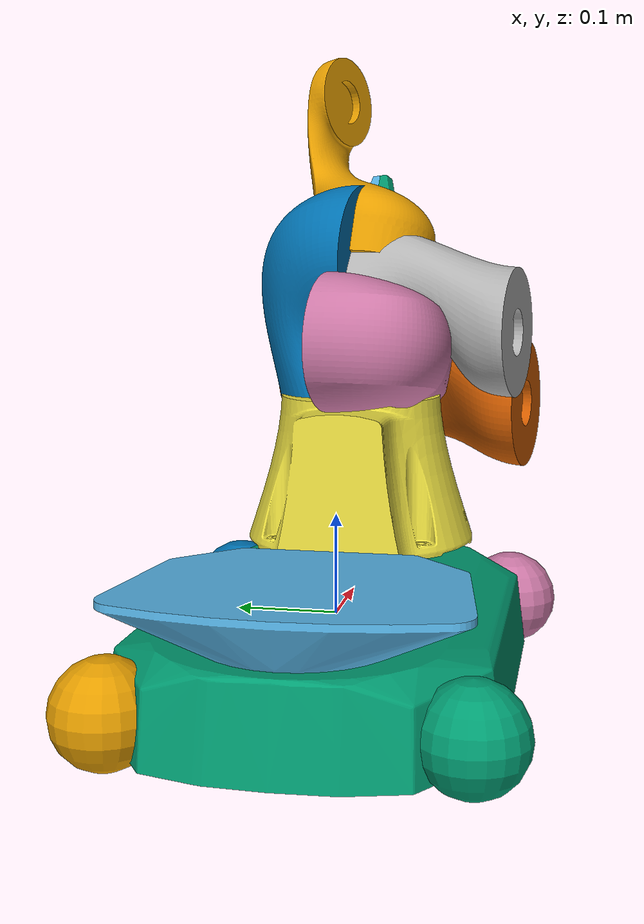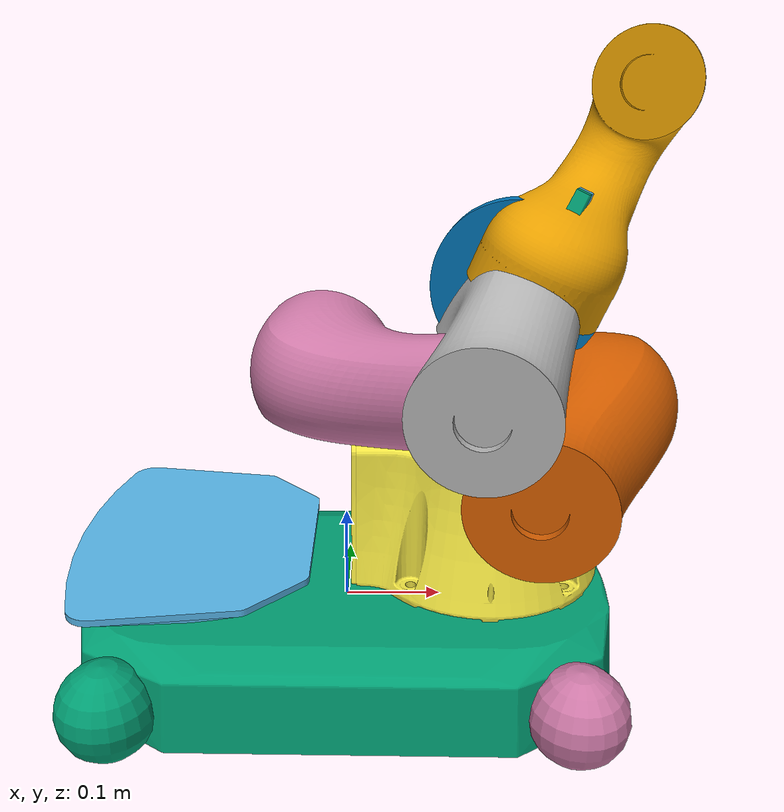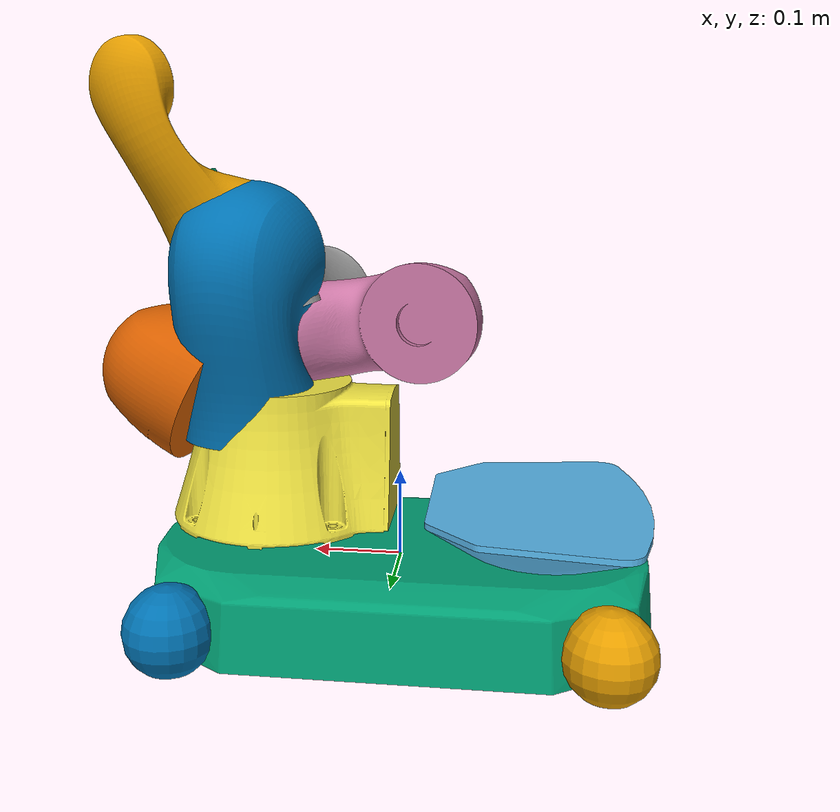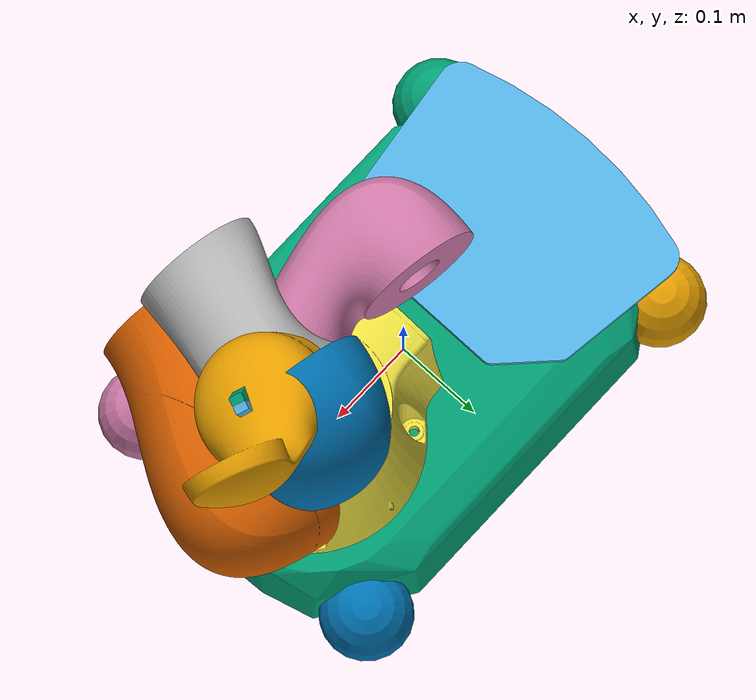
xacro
<?xml version="1.0" encoding="UTF-8"?>

<robot name="kuka_youbot" xmlns:xacro="http://wiki.ros.org/xacro">

    <xacro:arg name="control_type" default="Position"/>
    <xacro:arg name="main_frame_name" default="footprint"/>

    <!-- Import all Gazebo-customization elements, including Gazebo colors -->
    <xacro:include filename="$(find kuka_youbot_support)/urdf/kuka_youbot_gazebo.xacro"/>
    <xacro:include filename="$(find kuka_youbot_support)/urdf/kuka_youbot_macro.xacro"/>
    <xacro:include filename="$(find kuka_youbot_support)/urdf/kuka_youbot_transmission.xacro"/>

    <xacro:kuka_youbot prefix="" main_frame_name="$(arg main_frame_name)"/>
    <xacro:kuka_youbot_transmission prefix="" control_type="$(arg control_type)"/>
    <xacro:kuka_youbot_gazebo prefix="" main_frame_name="$(arg main_frame_name)"/>

    <!-- For mobile robots we can not set world as main frame, but rvis requires it. Because of that we need to specify
    name of main frame with run parameter-->

</robot>

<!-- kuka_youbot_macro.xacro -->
<robot xmlns:xacro="http://wiki.ros.org/xacro">

    <!-- PI константа -->
    <xacro:property name="PI" value="3.1415926535897931"/>

    <!--т.к. колёса у нас одинаоквые, а их 4 для экономии места запишем их параметры через переменные-->
    <xacro:property name="caster_offset_x" value="0.228"/>
    <xacro:property name="caster_offset_y" value="0.158"/>
    <xacro:property name="caster_offset_z" value="-0.034"/>
    <xacro:property name="wheel_offset_x" value="0.0"/>
    <xacro:property name="wheel_offset_y" value="0.0"/>
    <xacro:property name="wheel_offset_z" value="0.0"/>
    <xacro:property name="wheel_radius" value="0.05"/>
    <xacro:property name="wheel_length" value="0.005"/>
    <xacro:property name="caster_joint_damping" value="1.0"/>
    <xacro:property name="caster_joint_friction" value="1.0"/>
    <xacro:property name="caster_joint_effort" value="30"/>
    <xacro:property name="caster_joint_velocity" value="10"/>
    <xacro:property name="wheel_joint_damping" value="1.0"/>
    <xacro:property name="wheel_joint_friction" value="1.0"/>
    <xacro:property name="wheel_joint_effort" value="30"/>
    <xacro:property name="wheel_joint_velocity" value="10"/>
    <xacro:macro name="wheel_link_content">
        <inertial>
            <mass value="0.4"/>
            <origin xyz="0 0 0"/>
            <inertia ixx="0.012411765597" ixy="-0.000711733678" ixz="0.00050272983" iyy="0.015218160428"
                     iyz="-0.000004273467" izz="0.011763977943"/>
        </inertial>
        <visual>
            <origin xyz="0 0 0" rpy="0 0 0"/>
            <geometry>
                <sphere radius="${wheel_radius}"/>
            </geometry>
        </visual>
        <collision>
            <origin xyz="0 0 0" rpy="${PI/2} 0 0"/>
            <geometry>
                <cylinder radius="${wheel_radius}" length="${wheel_radius}"/>
            </geometry>
        </collision>
    </xacro:macro>
    <xacro:macro name="caster_link_content">
        <inertial>
            <mass value="0.1"/>
            <origin xyz="0 0 0"/>
            <inertia ixx="0.012411765597" ixy="-0.000711733678" ixz="0.00050272983" iyy="0.015218160428"
                     iyz="-0.000004273467" izz="0.011763977943"/>
        </inertial>
    </xacro:macro>

    <xacro:macro name="kuka_youbot" params="prefix main_frame_name">

        <!--******************************************BASE*************************************************-->
        <link name="${prefix}${main_frame_name}">
            <visual>
                <origin xyz="0 0 0" rpy="0 0 0"/>
                <geometry>
                    <box size="0.001 0.001 0.001"/>
                </geometry>
            </visual>
            <collision>
                <origin xyz="0 0 -0.050" rpy="0 0 0"/>
                <geometry>
                    <box size="0.001 0.001 0.001"/>
                </geometry>
            </collision>
        </link>
        <link name="${prefix}plate_link">
            <inertial>
                <origin xyz="0 0 0" rpy="0 0 0"/>
                <mass value="1"/>
                <inertia ixx="0.01" ixy="0" ixz="0" iyy="0.01" iyz="0" izz="0.01"/>
            </inertial>
            <visual>
                <origin xyz="0 0 0" rpy="0 0 0"/>
                <geometry>
                    <mesh filename="package://kuka_youbot_support/meshes/visual/plate.dae"/>
                </geometry>
            </visual>
            <collision>
                <origin xyz="0 0 0" rpy="0 0 0"/>
                <geometry>
                    <mesh filename="package://kuka_youbot_support/meshes/collision/plate.stl"/>
                </geometry>
            </collision>
        </link>
        <link name="${prefix}base_link">
            <inertial>
                <mass value="100"/>
                <origin xyz="0 0 0"/>
                <inertia ixx="5.652232699207" ixy="-0.009719934438" ixz="1.293988226423" iyy="5.669473158652"
                         iyz="-0.007379583694" izz="3.683196351726"/>
            </inertial>
            <visual>
                <origin xyz="0 0 0" rpy="0 0 0"/>
                <geometry>
                    <mesh filename="package://kuka_youbot_support/meshes/visual/base.dae"/>
                </geometry>
            </visual>
            <collision>
                <origin xyz="0 0 0" rpy="0 0 0"/>
                <geometry>
                    <mesh filename="package://kuka_youbot_support/meshes/collision/base.stl"/>
                </geometry>
            </collision>
        </link>
        <link name="caster_link_fl">
            <xacro:caster_link_content/>
        </link>
        <link name="wheel_link_fl">
            <xacro:wheel_link_content/>
        </link>
        <link name="caster_link_fr">
            <xacro:caster_link_content/>
        </link>
        <link name="wheel_link_fr">
            <xacro:wheel_link_content/>
        </link>
        <link name="caster_link_bl">
            <xacro:caster_link_content/>
        </link>
        <link name="wheel_link_bl">
            <xacro:wheel_link_content/>
        </link>
        <link name="caster_link_br">
            <xacro:caster_link_content/>
        </link>
        <link name="wheel_link_br">
            <xacro:wheel_link_content/>
        </link>

        <joint name="${prefix}plate_joint" type="fixed">
            <origin xyz="-0.159 0 0.046" rpy="0 0 0"/>
            <parent link="${prefix}base_link"/>
            <child link="${prefix}plate_link"/>
        </joint>
        <joint name="${prefix}footprint_joint" type="fixed">
            <origin xyz="0 0 0" rpy="0 0 0"/>
            <child link="${prefix}base_link"/>
            <parent link="${prefix}${main_frame_name}"/>
        </joint>
        <joint name="caster_joint_fl" type="continuous">
            <origin xyz="${caster_offset_x} ${caster_offset_y} ${caster_offset_z}" rpy="0 0 0"/>
            <axis xyz="0 0 1"/>
            <limit effort="${caster_joint_effort}" velocity="${caster_joint_velocity}"/>
            <dynamics damping="${caster_joint_damping}" friction="${caster_joint_friction}"/>
            <parent link="${prefix}base_link"/>
            <child link="caster_link_fl"/>
        </joint>
        <joint name="wheel_joint_fl" type="continuous">
            <axis xyz="0 1 0"/>
            <limit effort="${wheel_joint_effort}" velocity="${wheel_joint_velocity}"/>
            <origin xyz="${wheel_offset_x} ${wheel_offset_y} ${wheel_offset_z}" rpy="0 0 0"/>
            <parent link="caster_link_fl"/>
            <dynamics damping="${wheel_joint_damping}" friction="${wheel_joint_friction}"/>
            <child link="wheel_link_fl"/>
        </joint>
        <joint name="caster_joint_fr" type="continuous">
            <origin xyz="${caster_offset_x} ${-caster_offset_y} ${caster_offset_z}" rpy="0 0 0"/>
            <axis xyz="0 0 1"/>
            <limit effort="${caster_joint_effort}" velocity="${caster_joint_velocity}"/>
            <dynamics damping="${caster_joint_damping}" friction="${caster_joint_friction}"/>
            <parent link="${prefix}base_link"/>
            <child link="caster_link_fr"/>
        </joint>
        <joint name="wheel_joint_fr" type="continuous">
            <axis xyz="0 1 0"/>
            <limit effort="${wheel_joint_effort}" velocity="${wheel_joint_velocity}"/>
            <dynamics damping="${wheel_joint_damping}" friction="${wheel_joint_friction}"/>
            <origin xyz="${wheel_offset_x} ${wheel_offset_y} ${wheel_offset_z}" rpy="0 0 0"/>
            <parent link="caster_link_fr"/>
            <child link="wheel_link_fr"/>
        </joint>
        <joint name="caster_joint_bl" type="continuous">
            <origin xyz="${-caster_offset_x} ${caster_offset_y} ${caster_offset_z}" rpy="0 0 0"/>
            <axis xyz="0 0 1"/>
            <limit effort="${caster_joint_effort}" velocity="${caster_joint_velocity}"/>
            <dynamics damping="${caster_joint_damping}" friction="${caster_joint_friction}"/>
            <parent link="${prefix}base_link"/>
            <child link="caster_link_bl"/>
        </joint>
        <joint name="wheel_joint_bl" type="continuous">
            <axis xyz="0 1 0"/>
            <limit effort="10" velocity="10"/>
            <limit effort="${wheel_joint_effort}" velocity="${wheel_joint_velocity}"/>
            <dynamics damping="${wheel_joint_damping}" friction="${wheel_joint_friction}"/>
            <origin xyz="${wheel_offset_x} ${wheel_offset_y} ${wheel_offset_z}" rpy="0 0 0"/>
            <parent link="caster_link_bl"/>
            <child link="wheel_link_bl"/>
        </joint>
        <joint name="caster_joint_br" type="continuous">
            <origin xyz="${-caster_offset_x} ${-caster_offset_y} ${caster_offset_z}" rpy="0 0 0"/>
            <axis xyz="0 0 1"/>
            <limit effort="${caster_joint_effort}" velocity="${caster_joint_velocity}"/>
            <dynamics damping="${caster_joint_damping}" friction="${caster_joint_friction}"/>
            <parent link="${prefix}base_link"/>
            <child link="caster_link_br"/>
        </joint>
        <joint name="wheel_joint_br" type="continuous">
            <axis xyz="0 1 0"/>
            <limit effort="${wheel_joint_effort}" velocity="${wheel_joint_velocity}"/>
            <dynamics damping="${wheel_joint_damping}" friction="${wheel_joint_friction}"/>
            <origin xyz="${wheel_offset_x} ${wheel_offset_y} ${wheel_offset_z}" rpy="0 0 0"/>
            <parent link="caster_link_br"/>
            <child link="wheel_link_br"/>
        </joint>

        <!--**************************ARM************************************-->
        <link name="${prefix}arm_link_0">
            <inertial>
                <origin xyz="0 0 0" rpy="0 0 0"/>
                <mass value="0.845"/>
                <inertia ixx="0.01" ixy="0" ixz="0" iyy="0.01" iyz="0" izz="0.01"/>
            </inertial>
            <visual>
                <origin xyz="0 0 0" rpy="0 0 0"/>
                <geometry>
                    <mesh filename="package://kuka_youbot_support/meshes/visual/link_0.dae"/>
                </geometry>
            </visual>
            <collision>
                <origin xyz="0 0 0" rpy="0 0 0"/>
                <geometry>
                    <mesh filename="package://kuka_youbot_support/meshes/collision/link_0.stl"/>
                </geometry>
            </collision>
        </link>
        <link name="${prefix}arm_link_1">
            <inertial>
                <mass value="2.412"/>
                <origin xyz="0.01489 0.00213 0.00213" rpy="0 0 0"/>
                <inertia ixx="0.003863" ixy="-0.000979" ixz="0.000000" iyy="0.006196" iyz="0.000000" izz="0.006369"/>
            </inertial>
            <visual>
                <origin xyz="0 0 0" rpy="0 0 0"/>
                <geometry>
                    <mesh filename="package://kuka_youbot_support/meshes/visual/link_1.dae"/>
                </geometry>
            </visual>
            <collision>
                <origin xyz="0 0 0" rpy="0 0 0"/>
                <geometry>
                    <mesh filename="package://kuka_youbot_support/meshes/collision/link_1.stl"/>
                </geometry>
            </collision>
        </link>
        <link name="${prefix}arm_link_2">
            <inertial>
                <mass value="1.155"/>
                <origin xyz="0.10453 0.0017 -0.00297"
                        rpy="0 0 0"/>
                <inertia ixx="0.000823" ixy="0.000000" ixz="-0.000000" iyy="0.004447" iyz="0.000000" izz="0.004439"/>
            </inertial>
            <visual>
                <origin xyz="0 -0.032 0.078" rpy="0 0 0"/>
                <geometry>
                    <mesh filename="package://kuka_youbot_support/meshes/visual/link_2.dae"/>
                </geometry>
            </visual>
            <collision>
                <origin xyz="0 -0.032 0.078" rpy="0 0 0"/>
                <geometry>
                    <mesh filename="package://kuka_youbot_support/meshes/collision/link_2.stl"/>
                </geometry>
            </collision>
        </link>
        <link name="${prefix}arm_link_3">
            <inertial>
                <mass value="0.934"/>
                <origin xyz="0.0001 0.0967 0.02107"
                        rpy="0 0 0"/>
                <inertia ixx="0.002459" ixy="0.000000" ixz="0.000000" iyy="0.002571" iyz="-0.000000" izz="0.000535"/>
            </inertial>
            <visual>
                <origin xyz="0.000 0.028 0.079" rpy="0 0 0"/>
                <geometry>
                    <mesh filename="package://kuka_youbot_support/meshes/visual/link_3.dae"/>
                </geometry>
            </visual>
            <collision>
                <origin xyz="0.000 0.028 0.079" rpy="0 0 0"/>
                <geometry>
                    <mesh filename="package://kuka_youbot_support/meshes/collision/link_3.stl"/>
                </geometry>
            </collision>
        </link>
        <link name="${prefix}arm_link_4">
            <inertial>
                <mass value="0.877"/>
                <origin xyz="0.00011 0.05103 -0.02319"
                        rpy="0 0 0"/>
                <inertia ixx="0.000869" ixy="0.000000" ixz="-0.000000" iyy="0.001173" iyz="-0.000231" izz="0.001091"/>
            </inertial>
            <visual>
                <origin xyz="0 -0.010 0.029" rpy="0 0 0"/>
                <geometry>
                    <mesh filename="package://kuka_youbot_support/meshes/visual/link_4.dae"/>
                </geometry>
            </visual>
            <collision>
                <origin xyz="0 -0.010 0.029" rpy="0 0 0"/>
                <geometry>
                    <mesh filename="package://kuka_youbot_support/meshes/collision/link_4.stl"/>
                </geometry>
            </collision>
        </link>
        <link name="${prefix}arm_link_5">
            <inertial>
                <mass value="0.251"/>
                <origin xyz="0 0.00115 -0.01683"
                        rpy="0 0 0"/>
                <inertia ixx="0.000280" ixy="0.000000" ixz="0.000000" iyy="0.000339" iyz="0.000000" izz="0.000119"/>
            </inertial>
            <visual>
                <origin xyz="0.003 0 -0.034" rpy="0 0 0"/>
                <geometry>
                    <mesh filename="package://kuka_youbot_support/meshes/visual/link_5.dae"/>
                </geometry>
            </visual>

            <collision>
                <origin xyz="0.003 0 -0.034" rpy="0 0 0"/>
                <geometry>
                    <mesh filename="package://kuka_youbot_support/meshes/collision/link_5.stl"/>
                </geometry>
            </collision>
        </link>

        <joint name="${prefix}arm_joint_0" type="fixed">
            <origin xyz="0.143 0 0.046" rpy="0 0 0"/>
            <parent link="${prefix}base_link"/>
            <child link="${prefix}arm_link_0"/>
        </joint>
        <joint name="${prefix}arm_joint_1" type="revolute">
            <origin xyz="0.024 0 0.096" rpy="0 0 ${170 * PI / 180}"/>
            <parent link="${prefix}arm_link_0"/>
            <child link="${prefix}arm_link_1"/>
            <axis xyz="0 0 -1"/>
            <dynamics damping="1" friction="1"/>
            <limit effort="${9.5}" velocity="${PI / 2.0}" lower="0" upper="${PI * (169 + 169) / 180}"/>
        </joint>
        <joint name="${prefix}arm_joint_2" type="revolute">
            <origin xyz="0.033 0 0.019" rpy="0 ${-65 * PI / 180} 0"/>
            <parent link="${prefix}arm_link_1"/>
            <child link="${prefix}arm_link_2"/>
            <axis xyz="0 1 0"/>
            <dynamics damping="1" friction="1"/>
            <limit effort="${9.5}" velocity="${PI / 2.0}" lower="0" upper="${PI * (90 + 65) / 180}"/>
        </joint>
        <joint name="${prefix}arm_joint_3" type="revolute">
            <origin xyz="0.000 0.000 0.155" rpy="0 ${146 * PI / 180} 0"/>
            <parent link="${prefix}arm_link_2"/>
            <child link="${prefix}arm_link_3"/>
            <axis xyz="0 1 0"/>
            <dynamics damping="1" friction="1"/>
            <limit effort="${6}" velocity="${PI / 2.0}" lower="-${PI * (146 + 151) / 180}" upper="0"/>
        </joint>
        <joint name="${prefix}arm_joint_4" type="revolute">
            <origin xyz="0.000 0.000 0.135" rpy="0 ${-102.5 * PI / 180} 0"/>
            <parent link="${prefix}arm_link_3"/>
            <child link="${prefix}arm_link_4"/>
            <axis xyz="0 1 0"/>
            <dynamics damping="1" friction="1"/>
            <limit effort="${2}" velocity="${PI / 2.0}" lower="0" upper="${PI * (102.5 + 102.5) / 180}"/>
        </joint>
        <joint name="${prefix}arm_joint_5" type="revolute">
            <origin xyz="-0.002 0 0.130" rpy="0 0 ${167.5 * PI / 180}"/>
            <parent link="${prefix}arm_link_4"/>
            <child link="${prefix}arm_link_5"/>
            <axis xyz="0 0 -1"/>
            <dynamics damping="1" friction="1"/>
            <limit effort="1" velocity="${PI / 2.0}" lower="0" upper="${PI * (167.5 + 167.5) / 180}"/>
        </joint>

        <!--*************************GRIPPER*********************-->
        <link name="${prefix}gripper_finger_link_l">
            <inertial>
                <origin xyz="0 -0.001 0" rpy="0 0 0"/>
                <mass value="0.01"/>
                <inertia ixx="0.01" ixy="0" ixz="0" iyy="0.01" iyz="0" izz="0.01"/>
            </inertial>
            <visual>
                <origin xyz="0 0 0" rpy="0 0 0"/>
                <geometry>
                    <mesh filename="package://kuka_youbot_support/meshes/visual/finger.dae"/>
                </geometry>
            </visual>
            <collision>
                <origin xyz="0 0 0" rpy="0 0 0"/>
                <geometry>
                    <mesh filename="package://kuka_youbot_support/meshes/collision/finger.stl"/>
                </geometry>
            </collision>
        </link>
        <link name="${prefix}gripper_finger_link_r">
            <inertial>
                <origin xyz="0.000 -0.001 0" rpy="0 0 0"/>
                <mass value="0.01"/>
                <inertia ixx="0.01" ixy="0" ixz="0" iyy="0.01" iyz="0" izz="0.01"/>
            </inertial>
            <visual>
                <origin xyz="0 0 0" rpy="0 0 0"/>
                <geometry>
                    <mesh filename="package://kuka_youbot_support/meshes/visual/finger.dae"/>
                </geometry>
            </visual>
            <collision>
                <origin xyz="0.000 0 0" rpy="0 0 0"/>
                <geometry>
                    <mesh filename="package://kuka_youbot_support/meshes/collision/finger.stl"/>
                </geometry>
            </collision>
        </link>
        <link name="${prefix}_palm_link">
            <inertial>
                <origin xyz="0 0 0" rpy="0 0 0"/>
                <mass value="0.1"/>
                <inertia ixx="0.01" ixy="0" ixz="0" iyy="0.01" iyz="0" izz="0.01"/>
            </inertial>
            <visual>
                <origin xyz="0 0 0" rpy="0 0 0"/>
                <geometry>
                    <mesh filename="package://kuka_youbot_support/meshes/visual/palm.dae"/>
                </geometry>
            </visual>
            <collision>
                <origin xyz="0 0 0" rpy="0 0 0"/>
                <geometry>
                    <mesh filename="package://kuka_youbot_support/meshes/collision/palm.stl"/>
                </geometry>
            </collision>
        </link>

        <joint name="${prefix}_palm_joint" type="fixed">
            <origin xyz="0 0 0" rpy="0 0 0"/>
            <parent link="${prefix}arm_link_5"/>
            <child link="${prefix}_palm_link"/>
        </joint>
        <joint name="${prefix}gripper_finger_joint_l" type="prismatic">
            <origin xyz="0.004 0.008 0.046" rpy="0 0 ${PI}"/>
            <parent link="${prefix}_palm_link"/>
            <child link="${prefix}gripper_finger_link_l"/>
            <axis xyz="0 -1 0"/>
            <dynamics damping="1.0" friction="1.0"/>
            <limit effort="1" velocity="0.1" lower="0" upper="0.0115"/>
        </joint>
        <joint name="${prefix}gripper_finger_joint_r" type="prismatic">
            <origin xyz="0.004 -0.008 0.046" rpy="0 0 0"/>
            <parent link="${prefix}_palm_link"/>
            <child link="${prefix}gripper_finger_link_r"/>
            <axis xyz="0 -1 0"/>
            <dynamics damping="1.0" friction="1.0"/>
            <limit effort="1" velocity="0.1" lower="0" upper="0.0115"/>
        </joint>

    </xacro:macro>
</robot>
